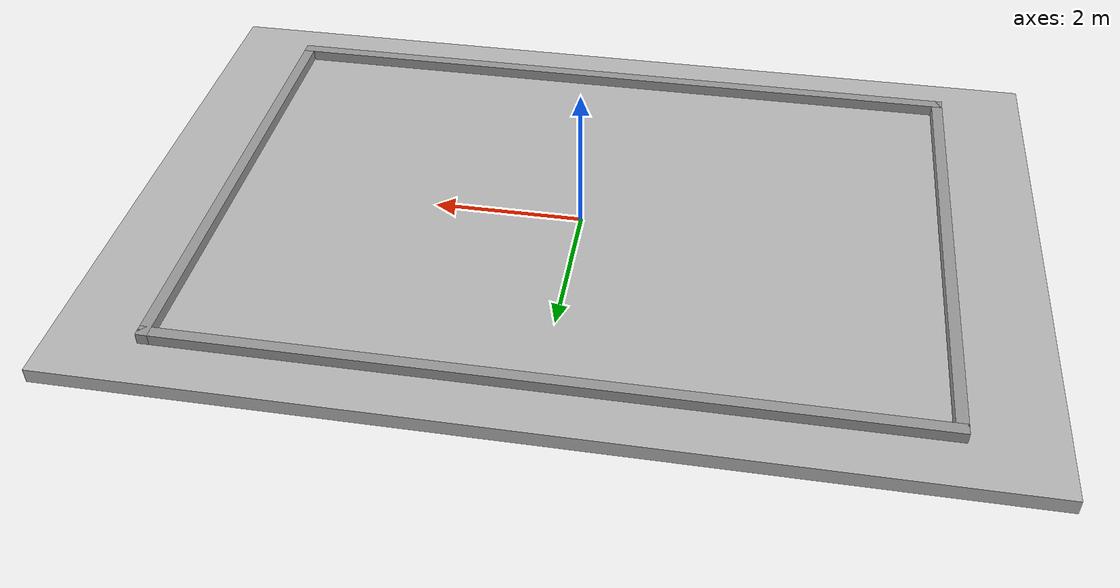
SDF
<?xml version="1.0" ?>
<sdf version="1.5">
  <world name="default">
    <scene>
      <ambient>0.4 0.4 0.4 1</ambient>
      <background>0.7 0.7 0.7 1</background>
    </scene>

    <light name="sun" type="directional">
      <pose>0 0 10 0 0 0</pose>
      <cast_shadows>true</cast_shadows>
      <diffuse>0.8 0.8 0.8 1</diffuse>
      <specular>0.2 0.2 0.2 1</specular>
      <attenuation>
        <range>1000</range>
        <constant>0.9</constant>
        <linear>0.01</linear>
        <quadratic>0.001</quadratic>
      </attenuation>
      <direction>-0.5 0.1 -0.9</direction>
    </light>

    <include>
      <uri>model://plane_test</uri>
      <pose>0 0 0 0 0 0</pose>
    </include>

    <include>
      <uri>model://walls</uri>
      <pose>0 0 0 0 0 0</pose>
    </include>

  </world>
</sdf>

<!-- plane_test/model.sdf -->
<sdf version='1.6'>
  <model name='plane_test'>
    <link name='link'>
      <inertial>
        <mass>13.3626</mass>
        <inertia>
          <ixx>86.3001</ixx>
          <ixy>0</ixy>
          <ixz>0</ixz>
          <iyy>89.6046</iyy>
          <iyz>0</iyz>
          <izz>175.841</izz>
        </inertia>
        <pose frame=''>0 0 0 0 -0 0</pose>
      </inertial>
      <self_collide>0</self_collide>
      <enable_wind>0</enable_wind>
      <kinematic>0</kinematic>
      <pose frame=''>0.0 0.0 0 0 -0 0</pose>
      <visual name='visual'>
        <geometry>
          <box>
            <size>12.057045 7.762755 0.20</size>
          </box>
        </geometry>
        <material>
          <script>
            <uri>model://plane_test/materials/scripts</uri>
            <uri>model://plane_test/materials/textures</uri>
            <name>vrc/circuit</name>
          </script>
        </material>
        <pose frame=''>0 0 0 0 -0 0</pose>
        <transparency>0</transparency>
        <cast_shadows>1</cast_shadows>
      </visual>
      <collision name='collision'>
        <laser_retro>0</laser_retro>
        <max_contacts>10</max_contacts>
        <pose frame=''>0 0 0 0 -0 0</pose>
        <geometry>
          <box>
            <size>12.057045 7.762755 0.20</size>
          </box>
        </geometry>
        <surface>
          <friction>
            <ode>
              <mu>1</mu>
              <mu2>1</mu2>
              <fdir1>0 0 0</fdir1>
              <slip1>0</slip1>
              <slip2>0</slip2>
            </ode>
            <torsional>
              <coefficient>1</coefficient>
              <patch_radius>0</patch_radius>
              <surface_radius>0</surface_radius>
              <use_patch_radius>1</use_patch_radius>
              <ode>
                <slip>0</slip>
              </ode>
            </torsional>
          </friction>
          <bounce>
            <restitution_coefficient>0</restitution_coefficient>
            <threshold>1e+06</threshold>
          </bounce>
          <contact>
            <collide_without_contact>0</collide_without_contact>
            <collide_without_contact_bitmask>1</collide_without_contact_bitmask>
            <collide_bitmask>1</collide_bitmask>
            <ode>
              <soft_cfm>0</soft_cfm>
              <soft_erp>0.2</soft_erp>
              <kp>1e+13</kp>
              <kd>1</kd>
              <max_vel>0.01</max_vel>
              <min_depth>0</min_depth>
            </ode>
            <bullet>
              <split_impulse>1</split_impulse>
              <split_impulse_penetration_threshold>-0.01</split_impulse_penetration_threshold>
              <soft_cfm>0</soft_cfm>
              <soft_erp>0.2</soft_erp>
              <kp>1e+13</kp>
              <kd>1</kd>
            </bullet>
          </contact>
        </surface>
      </collision>
    </link>
    <static>1</static>   <!-- To make the plane static, set this to 1 -->
    <allow_auto_disable>1</allow_auto_disable>
  </model>
</sdf>

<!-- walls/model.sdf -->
<sdf version='1.7'>
  <model name='walls'>
    <pose>-0.051936 0.025334 0 0 -0 0</pose>
    <link name='Wall_0'>
      <collision name='Wall_0_Collision'>
        <geometry>
          <box>
            <size>6.5 0.15 0.25</size>
          </box>
        </geometry>
        <pose>0 0 0.125 0 -0 0</pose>
      </collision>
      <visual name='Wall_0_Visual'>
        <pose>0 0 0.125 0 -0 0</pose>
        <geometry>
          <box>
            <size>6.5 0.15 0.25</size>
          </box>
        </geometry>
        <material>
          <script>
            <uri>file://media/materials/scripts/gazebo.material</uri>
            <name>Gazebo/Grey</name>
          </script>
          <ambient>1 1 1 1</ambient>
        </material>
        <meta>
          <layer>0</layer>
        </meta>
      </visual>
      <pose>-4.8 0 0 0 -0 -1.5708</pose>
    </link>
    <link name='Wall_2'>
      <collision name='Wall_2_Collision'>
        <geometry>
          <box>
            <size>9.75 0.15 0.25</size>
          </box>
        </geometry>
        <pose>0 0 0.125 0 -0 0</pose>
      </collision>
      <visual name='Wall_2_Visual'>
        <pose>0 0 0.125 0 -0 0</pose>
        <geometry>
          <box>
            <size>9.75 0.15 0.25</size>
          </box>
        </geometry>
        <material>
          <script>
            <uri>file://media/materials/scripts/gazebo.material</uri>
            <name>Gazebo/Grey</name>
          </script>
          <ambient>1 1 1 1</ambient>
        </material>
        <meta>
          <layer>0</layer>
        </meta>
      </visual>
      <pose>0 -3.175 0 0 -0 0</pose>
    </link>
    <link name='Wall_4'>
      <collision name='Wall_4_Collision'>
        <geometry>
          <box>
            <size>6.5 0.15 0.25</size>
          </box>
        </geometry>
        <pose>0 0 0.125 0 -0 0</pose>
      </collision>
      <visual name='Wall_4_Visual'>
        <pose>0 0 0.125 0 -0 0</pose>
        <geometry>
          <box>
            <size>6.5 0.15 0.25</size>
          </box>
        </geometry>
        <material>
          <script>
            <uri>file://media/materials/scripts/gazebo.material</uri>
            <name>Gazebo/Grey</name>
          </script>
          <ambient>1 1 1 1</ambient>
        </material>
        <meta>
          <layer>0</layer>
        </meta>
      </visual>
      <pose>4.8 0 0 0 -0 1.5708</pose>
    </link>
    <link name='Wall_5'>
      <collision name='Wall_5_Collision'>
        <geometry>
          <box>
            <size>9.75 0.15 0.25</size>
          </box>
        </geometry>
        <pose>0 0 0.125 0 -0 0</pose>
      </collision>
      <visual name='Wall_5_Visual'>
        <pose>0 0 0.125 0 -0 0</pose>
        <geometry>
          <box>
            <size>9.75 0.15 0.25</size>
          </box>
        </geometry>
        <material>
          <script>
            <uri>file://media/materials/scripts/gazebo.material</uri>
            <name>Gazebo/Grey</name>
          </script>
          <ambient>1 1 1 1</ambient>
        </material>
        <meta>
          <layer>0</layer>
        </meta>
      </visual>
      <pose>0 3.175 0 0 -0 3.14159</pose>
    </link>
    <static>1</static>
  </model>
</sdf>
